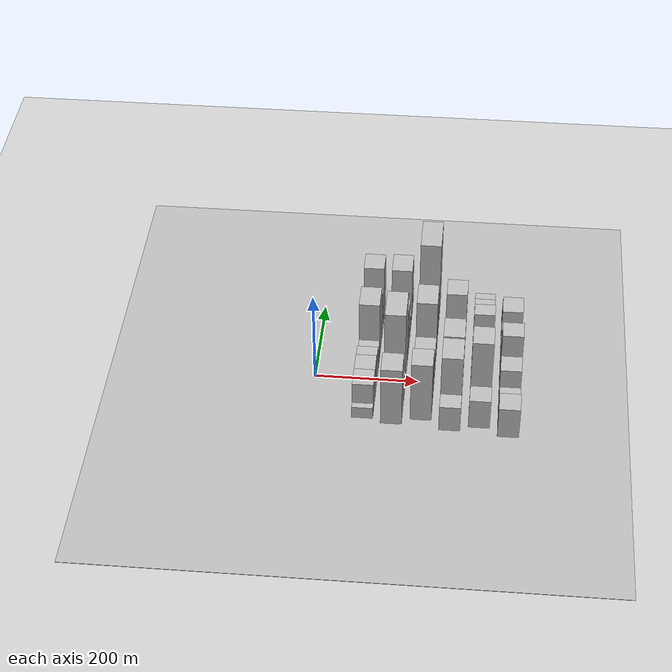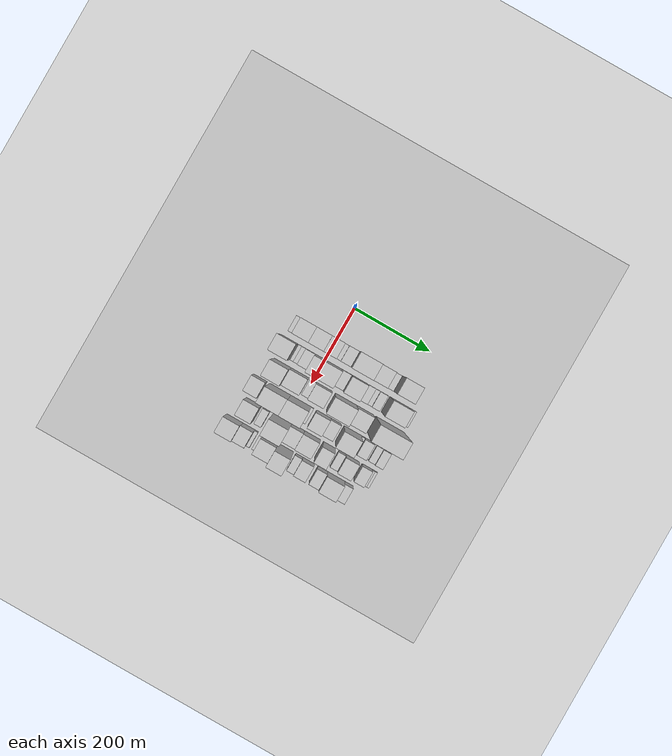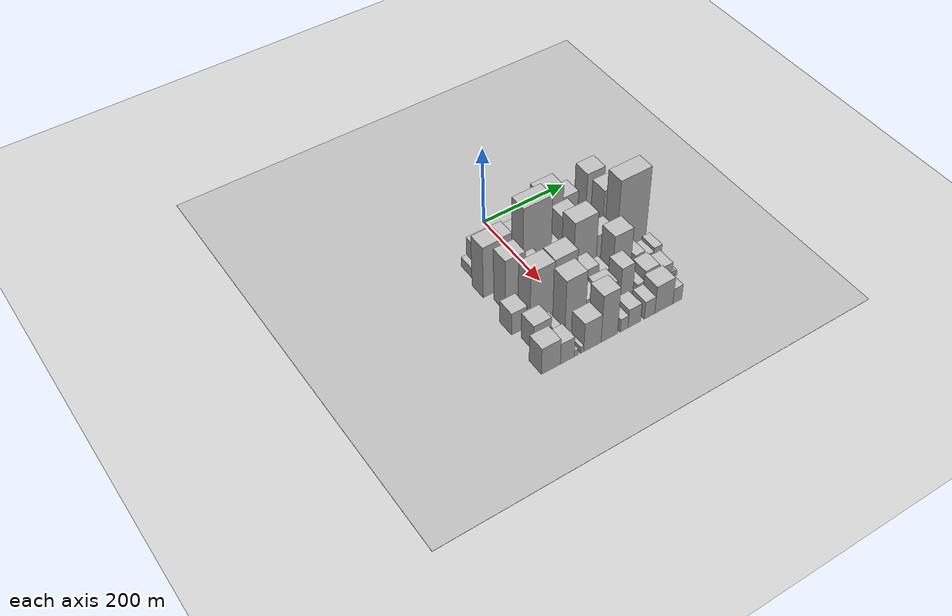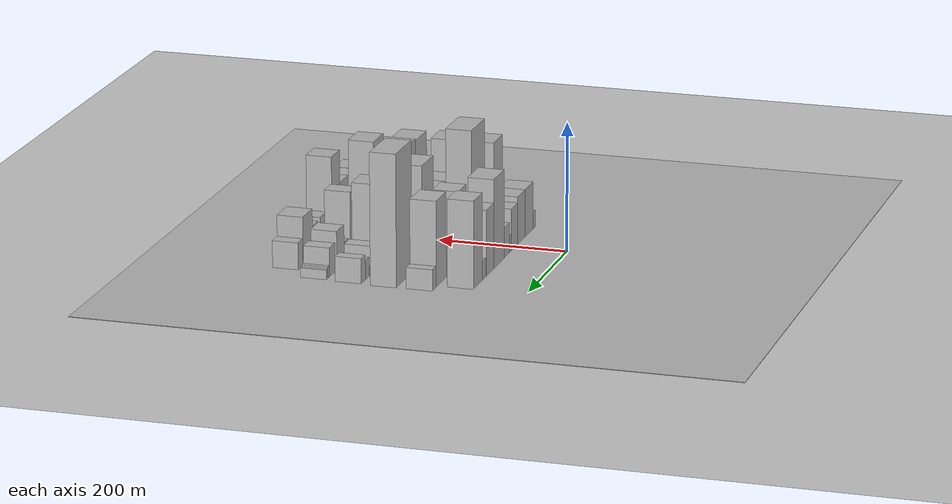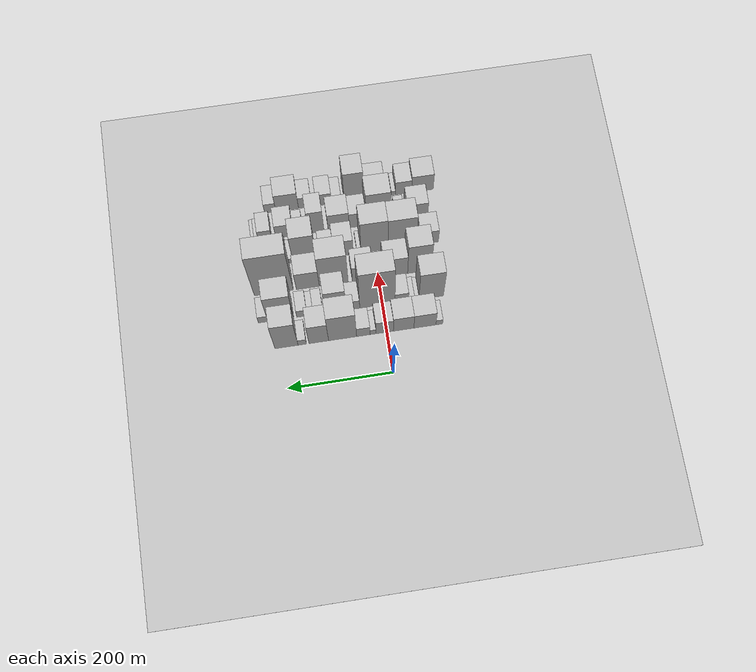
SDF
<sdf version="1.6">
 <world name="default">
  <include><name>ground_plane_1</name><uri>model://HANNAS_ground_plane</uri></include>
  <include>
   <name>ground_plane_2</name>
   <uri>model://HANNAS_ground_plane</uri>
   <pose>100 0 0  0 0 0</pose>
  </include>
  <model name="building_20">
   <static>1</static>
   <pose>100.0000 -99.8096 0 0.000000 0.000000 0.000000</pose>
   <link name="link">
    <pose>0 0 13.50 0 0 0</pose>
    <collision name="collision"><geometry><box><size>40.0000 12.9486 27.0000</size></box></geometry></collision>
    <visual name="visual">
     <cast_shadows>0</cast_shadows>
     <geometry><box><size>40.0000 12.9486 27.0000</size></box></geometry>
     <material>
      <script>
       <uri>model://HANNAS_wall/materials/scripts</uri>
       <uri>model://HANNAS_wall/materials/textures</uri>
       <name>vrc/HANNAS_wall</name>
      </script>
     </material>
    </visual>
   </link>
  </model>
  <model name="building_21">
   <static>1</static>
   <pose>100.0000 -72.1973 0 0.000000 0.000000 0.000000</pose>
   <link name="link">
    <pose>0 0 37.50 0 0 0</pose>
    <collision name="collision"><geometry><box><size>40.0000 42.2760 75.0000</size></box></geometry></collision>
    <visual name="visual">
     <cast_shadows>0</cast_shadows>
     <geometry><box><size>40.0000 42.2760 75.0000</size></box></geometry>
     <material>
      <script>
       <uri>model://HANNAS_wall/materials/scripts</uri>
       <uri>model://HANNAS_wall/materials/textures</uri>
       <name>vrc/HANNAS_wall</name>
      </script>
     </material>
    </visual>
   </link>
  </model>
  <model name="building_22">
   <static>1</static>
   <pose>100.0000 -31.4628 0 0.000000 0.000000 0.000000</pose>
   <link name="link">
    <pose>0 0 37.50 0 0 0</pose>
    <collision name="collision"><geometry><box><size>40.0000 39.1929 75.0000</size></box></geometry></collision>
    <visual name="visual">
     <cast_shadows>0</cast_shadows>
     <geometry><box><size>40.0000 39.1929 75.0000</size></box></geometry>
     <material>
      <script>
       <uri>model://HANNAS_wall/materials/scripts</uri>
       <uri>model://HANNAS_wall/materials/textures</uri>
       <name>vrc/HANNAS_wall</name>
      </script>
     </material>
    </visual>
   </link>
  </model>
  <model name="building_23">
   <static>1</static>
   <pose>100.0000 4.7394 0 0.000000 0.000000 0.000000</pose>
   <link name="link">
    <pose>0 0 33.00 0 0 0</pose>
    <collision name="collision"><geometry><box><size>40.0000 33.2117 66.0000</size></box></geometry></collision>
    <visual name="visual">
     <cast_shadows>0</cast_shadows>
     <geometry><box><size>40.0000 33.2117 66.0000</size></box></geometry>
     <material>
      <script>
       <uri>model://HANNAS_wall/materials/scripts</uri>
       <uri>model://HANNAS_wall/materials/textures</uri>
       <name>vrc/HANNAS_wall</name>
      </script>
     </material>
    </visual>
   </link>
  </model>
  <model name="building_24">
   <static>1</static>
   <pose>100.0000 26.8860 0 0.000000 0.000000 0.000000</pose>
   <link name="link">
    <pose>0 0 13.50 0 0 0</pose>
    <collision name="collision"><geometry><box><size>40.0000 11.0816 27.0000</size></box></geometry></collision>
    <visual name="visual">
     <cast_shadows>0</cast_shadows>
     <geometry><box><size>40.0000 11.0816 27.0000</size></box></geometry>
     <material>
      <script>
       <uri>model://HANNAS_wall/materials/scripts</uri>
       <uri>model://HANNAS_wall/materials/textures</uri>
       <name>vrc/HANNAS_wall</name>
      </script>
     </material>
    </visual>
   </link>
  </model>
  <model name="building_25">
   <static>1</static>
   <pose>100.0000 45.4038 0 0.000000 0.000000 0.000000</pose>
   <link name="link">
    <pose>0 0 24.00 0 0 0</pose>
    <collision name="collision"><geometry><box><size>40.0000 25.9538 48.0000</size></box></geometry></collision>
    <visual name="visual">
     <cast_shadows>0</cast_shadows>
     <geometry><box><size>40.0000 25.9538 48.0000</size></box></geometry>
     <material>
      <script>
       <uri>model://HANNAS_wall/materials/scripts</uri>
       <uri>model://HANNAS_wall/materials/textures</uri>
       <name>vrc/HANNAS_wall</name>
      </script>
     </material>
    </visual>
   </link>
  </model>
  <model name="building_26">
   <static>1</static>
   <pose>100.0000 85.0655 0 0.000000 0.000000 0.000000</pose>
   <link name="link">
    <pose>0 0 69.00 0 0 0</pose>
    <collision name="collision"><geometry><box><size>40.0000 53.3696 138.0000</size></box></geometry></collision>
    <visual name="visual">
     <cast_shadows>0</cast_shadows>
     <geometry><box><size>40.0000 53.3696 138.0000</size></box></geometry>
     <material>
      <script>
       <uri>model://HANNAS_wall/materials/scripts</uri>
       <uri>model://HANNAS_wall/materials/textures</uri>
       <name>vrc/HANNAS_wall</name>
      </script>
     </material>
    </visual>
   </link>
  </model>
  <model name="building_27">
   <static>1</static>
   <pose>100.0000 130.4153 0 0.000000 0.000000 0.000000</pose>
   <link name="link">
    <pose>0 0 51.00 0 0 0</pose>
    <collision name="collision"><geometry><box><size>40.0000 37.3301 102.0000</size></box></geometry></collision>
    <visual name="visual">
     <cast_shadows>0</cast_shadows>
     <geometry><box><size>40.0000 37.3301 102.0000</size></box></geometry>
     <material>
      <script>
       <uri>model://HANNAS_wall/materials/scripts</uri>
       <uri>model://HANNAS_wall/materials/textures</uri>
       <name>vrc/HANNAS_wall</name>
      </script>
     </material>
    </visual>
   </link>
  </model>
  <model name="building_28">
   <static>1</static>
   <pose>100.0000 162.0472 0 0.000000 0.000000 0.000000</pose>
   <link name="link">
    <pose>0 0 15.00 0 0 0</pose>
    <collision name="collision"><geometry><box><size>40.0000 15.9336 30.0000</size></box></geometry></collision>
    <visual name="visual">
     <cast_shadows>0</cast_shadows>
     <geometry><box><size>40.0000 15.9336 30.0000</size></box></geometry>
     <material>
      <script>
       <uri>model://HANNAS_wall/materials/scripts</uri>
       <uri>model://HANNAS_wall/materials/textures</uri>
       <name>vrc/HANNAS_wall</name>
      </script>
     </material>
    </visual>
   </link>
  </model>
  <model name="building_29">
   <static>1</static>
   <pose>100.0000 191.9779 0 0.000000 0.000000 0.000000</pose>
   <link name="link">
    <pose>0 0 67.50 0 0 0</pose>
    <collision name="collision"><geometry><box><size>40.0000 43.9278 135.0000</size></box></geometry></collision>
    <visual name="visual">
     <cast_shadows>0</cast_shadows>
     <geometry><box><size>40.0000 43.9278 135.0000</size></box></geometry>
     <material>
      <script>
       <uri>model://HANNAS_wall/materials/scripts</uri>
       <uri>model://HANNAS_wall/materials/textures</uri>
       <name>vrc/HANNAS_wall</name>
      </script>
     </material>
    </visual>
   </link>
  </model>
  <model name="building_71">
   <static>1</static>
   <pose>155.0000 -93.2026 0 0.000000 0.000000 0.000000</pose>
   <link name="link">
    <pose>0 0 69.00 0 0 0</pose>
    <collision name="collision"><geometry><box><size>40.0000 47.5985 138.0000</size></box></geometry></collision>
    <visual name="visual">
     <cast_shadows>0</cast_shadows>
     <geometry><box><size>40.0000 47.5985 138.0000</size></box></geometry>
     <material>
      <script>
       <uri>model://HANNAS_wall/materials/scripts</uri>
       <uri>model://HANNAS_wall/materials/textures</uri>
       <name>vrc/HANNAS_wall</name>
      </script>
     </material>
    </visual>
   </link>
  </model>
  <model name="building_72">
   <static>1</static>
   <pose>155.0000 -65.1442 0 0.000000 0.000000 0.000000</pose>
   <link name="link">
    <pose>0 0 9.00 0 0 0</pose>
    <collision name="collision"><geometry><box><size>40.0000 8.5184 18.0000</size></box></geometry></collision>
    <visual name="visual">
     <cast_shadows>0</cast_shadows>
     <geometry><box><size>40.0000 8.5184 18.0000</size></box></geometry>
     <material>
      <script>
       <uri>model://HANNAS_wall/materials/scripts</uri>
       <uri>model://HANNAS_wall/materials/textures</uri>
       <name>vrc/HANNAS_wall</name>
      </script>
     </material>
    </visual>
   </link>
  </model>
  <model name="building_73">
   <static>1</static>
   <pose>155.0000 -55.2796 0 0.000000 0.000000 0.000000</pose>
   <link name="link">
    <pose>0 0 12.00 0 0 0</pose>
    <collision name="collision"><geometry><box><size>40.0000 11.2107 24.0000</size></box></geometry></collision>
    <visual name="visual">
     <cast_shadows>0</cast_shadows>
     <geometry><box><size>40.0000 11.2107 24.0000</size></box></geometry>
     <material>
      <script>
       <uri>model://HANNAS_wall/materials/scripts</uri>
       <uri>model://HANNAS_wall/materials/textures</uri>
       <name>vrc/HANNAS_wall</name>
      </script>
     </material>
    </visual>
   </link>
  </model>
  <model name="building_74">
   <static>1</static>
   <pose>155.0000 -36.5506 0 0.000000 0.000000 0.000000</pose>
   <link name="link">
    <pose>0 0 24.00 0 0 0</pose>
    <collision name="collision"><geometry><box><size>40.0000 26.2474 48.0000</size></box></geometry></collision>
    <visual name="visual">
     <cast_shadows>0</cast_shadows>
     <geometry><box><size>40.0000 26.2474 48.0000</size></box></geometry>
     <material>
      <script>
       <uri>model://HANNAS_wall/materials/scripts</uri>
       <uri>model://HANNAS_wall/materials/textures</uri>
       <name>vrc/HANNAS_wall</name>
      </script>
     </material>
    </visual>
   </link>
  </model>
  <model name="building_75">
   <static>1</static>
   <pose>155.0000 10.3982 0 0.000000 0.000000 0.000000</pose>
   <link name="link">
    <pose>0 0 94.50 0 0 0</pose>
    <collision name="collision"><geometry><box><size>40.0000 67.6501 189.0000</size></box></geometry></collision>
    <visual name="visual">
     <cast_shadows>0</cast_shadows>
     <geometry><box><size>40.0000 67.6501 189.0000</size></box></geometry>
     <material>
      <script>
       <uri>model://HANNAS_wall/materials/scripts</uri>
       <uri>model://HANNAS_wall/materials/textures</uri>
       <name>vrc/HANNAS_wall</name>
      </script>
     </material>
    </visual>
   </link>
  </model>
  <model name="building_76">
   <static>1</static>
   <pose>155.0000 57.1042 0 0.000000 0.000000 0.000000</pose>
   <link name="link">
    <pose>0 0 22.50 0 0 0</pose>
    <collision name="collision"><geometry><box><size>40.0000 25.7621 45.0000</size></box></geometry></collision>
    <visual name="visual">
     <cast_shadows>0</cast_shadows>
     <geometry><box><size>40.0000 25.7621 45.0000</size></box></geometry>
     <material>
      <script>
       <uri>model://HANNAS_wall/materials/scripts</uri>
       <uri>model://HANNAS_wall/materials/textures</uri>
       <name>vrc/HANNAS_wall</name>
      </script>
     </material>
    </visual>
   </link>
  </model>
  <model name="building_77">
   <static>1</static>
   <pose>155.0000 90.2830 0 0.000000 0.000000 0.000000</pose>
   <link name="link">
    <pose>0 0 57.00 0 0 0</pose>
    <collision name="collision"><geometry><box><size>40.0000 40.5954 114.0000</size></box></geometry></collision>
    <visual name="visual">
     <cast_shadows>0</cast_shadows>
     <geometry><box><size>40.0000 40.5954 114.0000</size></box></geometry>
     <material>
      <script>
       <uri>model://HANNAS_wall/materials/scripts</uri>
       <uri>model://HANNAS_wall/materials/textures</uri>
       <name>vrc/HANNAS_wall</name>
      </script>
     </material>
    </visual>
   </link>
  </model>
  <model name="building_78">
   <static>1</static>
   <pose>155.0000 123.9114 0 0.000000 0.000000 0.000000</pose>
   <link name="link">
    <pose>0 0 18.00 0 0 0</pose>
    <collision name="collision"><geometry><box><size>40.0000 18.6615 36.0000</size></box></geometry></collision>
    <visual name="visual">
     <cast_shadows>0</cast_shadows>
     <geometry><box><size>40.0000 18.6615 36.0000</size></box></geometry>
     <material>
      <script>
       <uri>model://HANNAS_wall/materials/scripts</uri>
       <uri>model://HANNAS_wall/materials/textures</uri>
       <name>vrc/HANNAS_wall</name>
      </script>
     </material>
    </visual>
   </link>
  </model>
  <model name="building_79">
   <static>1</static>
   <pose>155.0000 139.1063 0 0.000000 0.000000 0.000000</pose>
   <link name="link">
    <pose>0 0 13.50 0 0 0</pose>
    <collision name="collision"><geometry><box><size>40.0000 11.7283 27.0000</size></box></geometry></collision>
    <visual name="visual">
     <cast_shadows>0</cast_shadows>
     <geometry><box><size>40.0000 11.7283 27.0000</size></box></geometry>
     <material>
      <script>
       <uri>model://HANNAS_wall/materials/scripts</uri>
       <uri>model://HANNAS_wall/materials/textures</uri>
       <name>vrc/HANNAS_wall</name>
      </script>
     </material>
    </visual>
   </link>
  </model>
  <model name="building_80">
   <static>1</static>
   <pose>155.0000 154.9879 0 0.000000 0.000000 0.000000</pose>
   <link name="link">
    <pose>0 0 18.00 0 0 0</pose>
    <collision name="collision"><geometry><box><size>40.0000 20.0349 36.0000</size></box></geometry></collision>
    <visual name="visual">
     <cast_shadows>0</cast_shadows>
     <geometry><box><size>40.0000 20.0349 36.0000</size></box></geometry>
     <material>
      <script>
       <uri>model://HANNAS_wall/materials/scripts</uri>
       <uri>model://HANNAS_wall/materials/textures</uri>
       <name>vrc/HANNAS_wall</name>
      </script>
     </material>
    </visual>
   </link>
  </model>
  <model name="building_81">
   <static>1</static>
   <pose>155.0000 195.7702 0 0.000000 0.000000 0.000000</pose>
   <link name="link">
    <pose>0 0 66.00 0 0 0</pose>
    <collision name="collision"><geometry><box><size>40.0000 49.5297 132.0000</size></box></geometry></collision>
    <visual name="visual">
     <cast_shadows>0</cast_shadows>
     <geometry><box><size>40.0000 49.5297 132.0000</size></box></geometry>
     <material>
      <script>
       <uri>model://HANNAS_wall/materials/scripts</uri>
       <uri>model://HANNAS_wall/materials/textures</uri>
       <name>vrc/HANNAS_wall</name>
      </script>
     </material>
    </visual>
   </link>
  </model>
  <model name="building_82">
   <static>1</static>
   <pose>155.0000 229.5223 0 0.000000 0.000000 0.000000</pose>
   <link name="link">
    <pose>0 0 16.50 0 0 0</pose>
    <collision name="collision"><geometry><box><size>40.0000 17.9745 33.0000</size></box></geometry></collision>
    <visual name="visual">
     <cast_shadows>0</cast_shadows>
     <geometry><box><size>40.0000 17.9745 33.0000</size></box></geometry>
     <material>
      <script>
       <uri>model://HANNAS_wall/materials/scripts</uri>
       <uri>model://HANNAS_wall/materials/textures</uri>
       <name>vrc/HANNAS_wall</name>
      </script>
     </material>
    </visual>
   </link>
  </model>
  <model name="building_129">
   <static>1</static>
   <pose>210.0000 -79.5325 0 0.000000 0.000000 0.000000</pose>
   <link name="link">
    <pose>0 0 70.50 0 0 0</pose>
    <collision name="collision"><geometry><box><size>40.0000 45.7464 141.0000</size></box></geometry></collision>
    <visual name="visual">
     <cast_shadows>0</cast_shadows>
     <geometry><box><size>40.0000 45.7464 141.0000</size></box></geometry>
     <material>
      <script>
       <uri>model://HANNAS_wall/materials/scripts</uri>
       <uri>model://HANNAS_wall/materials/textures</uri>
       <name>vrc/HANNAS_wall</name>
      </script>
     </material>
    </visual>
   </link>
  </model>
  <model name="building_130">
   <static>1</static>
   <pose>210.0000 -33.7293 0 0.000000 0.000000 0.000000</pose>
   <link name="link">
    <pose>0 0 45.00 0 0 0</pose>
    <collision name="collision"><geometry><box><size>40.0000 45.8599 90.0000</size></box></geometry></collision>
    <visual name="visual">
     <cast_shadows>0</cast_shadows>
     <geometry><box><size>40.0000 45.8599 90.0000</size></box></geometry>
     <material>
      <script>
       <uri>model://HANNAS_wall/materials/scripts</uri>
       <uri>model://HANNAS_wall/materials/textures</uri>
       <name>vrc/HANNAS_wall</name>
      </script>
     </material>
    </visual>
   </link>
  </model>
  <model name="building_131">
   <static>1</static>
   <pose>210.0000 0.8746 0 0.000000 0.000000 0.000000</pose>
   <link name="link">
    <pose>0 0 16.50 0 0 0</pose>
    <collision name="collision"><geometry><box><size>40.0000 17.3480 33.0000</size></box></geometry></collision>
    <visual name="visual">
     <cast_shadows>0</cast_shadows>
     <geometry><box><size>40.0000 17.3480 33.0000</size></box></geometry>
     <material>
      <script>
       <uri>model://HANNAS_wall/materials/scripts</uri>
       <uri>model://HANNAS_wall/materials/textures</uri>
       <name>vrc/HANNAS_wall</name>
      </script>
     </material>
    </visual>
   </link>
  </model>
  <model name="building_132">
   <static>1</static>
   <pose>210.0000 30.0001 0 0.000000 0.000000 0.000000</pose>
   <link name="link">
    <pose>0 0 36.00 0 0 0</pose>
    <collision name="collision"><geometry><box><size>40.0000 40.9029 72.0000</size></box></geometry></collision>
    <visual name="visual">
     <cast_shadows>0</cast_shadows>
     <geometry><box><size>40.0000 40.9029 72.0000</size></box></geometry>
     <material>
      <script>
       <uri>model://HANNAS_wall/materials/scripts</uri>
       <uri>model://HANNAS_wall/materials/textures</uri>
       <name>vrc/HANNAS_wall</name>
      </script>
     </material>
    </visual>
   </link>
  </model>
  <model name="building_133">
   <static>1</static>
   <pose>210.0000 86.3339 0 0.000000 0.000000 0.000000</pose>
   <link name="link">
    <pose>0 0 75.00 0 0 0</pose>
    <collision name="collision"><geometry><box><size>40.0000 55.7647 150.0000</size></box></geometry></collision>
    <visual name="visual">
     <cast_shadows>0</cast_shadows>
     <geometry><box><size>40.0000 55.7647 150.0000</size></box></geometry>
     <material>
      <script>
       <uri>model://HANNAS_wall/materials/scripts</uri>
       <uri>model://HANNAS_wall/materials/textures</uri>
       <name>vrc/HANNAS_wall</name>
      </script>
     </material>
    </visual>
   </link>
  </model>
  <model name="building_134">
   <static>1</static>
   <pose>210.0000 136.3790 0 0.000000 0.000000 0.000000</pose>
   <link name="link">
    <pose>0 0 42.00 0 0 0</pose>
    <collision name="collision"><geometry><box><size>40.0000 44.3255 84.0000</size></box></geometry></collision>
    <visual name="visual">
     <cast_shadows>0</cast_shadows>
     <geometry><box><size>40.0000 44.3255 84.0000</size></box></geometry>
     <material>
      <script>
       <uri>model://HANNAS_wall/materials/scripts</uri>
       <uri>model://HANNAS_wall/materials/textures</uri>
       <name>vrc/HANNAS_wall</name>
      </script>
     </material>
    </visual>
   </link>
  </model>
  <model name="building_135">
   <static>1</static>
   <pose>210.0000 201.9920 0 0.000000 0.000000 0.000000</pose>
   <link name="link">
    <pose>0 0 102.00 0 0 0</pose>
    <collision name="collision"><geometry><box><size>40.0000 74.9003 204.0000</size></box></geometry></collision>
    <visual name="visual">
     <cast_shadows>0</cast_shadows>
     <geometry><box><size>40.0000 74.9003 204.0000</size></box></geometry>
     <material>
      <script>
       <uri>model://HANNAS_wall/materials/scripts</uri>
       <uri>model://HANNAS_wall/materials/textures</uri>
       <name>vrc/HANNAS_wall</name>
      </script>
     </material>
    </visual>
   </link>
  </model>
  <model name="building_179">
   <static>1</static>
   <pose>265.0000 -107.7108 0 0.000000 0.000000 0.000000</pose>
   <link name="link">
    <pose>0 0 30.00 0 0 0</pose>
    <collision name="collision"><geometry><box><size>40.0000 35.6724 60.0000</size></box></geometry></collision>
    <visual name="visual">
     <cast_shadows>0</cast_shadows>
     <geometry><box><size>40.0000 35.6724 60.0000</size></box></geometry>
     <material>
      <script>
       <uri>model://HANNAS_wall/materials/scripts</uri>
       <uri>model://HANNAS_wall/materials/textures</uri>
       <name>vrc/HANNAS_wall</name>
      </script>
     </material>
    </visual>
   </link>
  </model>
  <model name="building_180">
   <static>1</static>
   <pose>265.0000 -54.9754 0 0.000000 0.000000 0.000000</pose>
   <link name="link">
    <pose>0 0 72.00 0 0 0</pose>
    <collision name="collision"><geometry><box><size>40.0000 55.7984 144.0000</size></box></geometry></collision>
    <visual name="visual">
     <cast_shadows>0</cast_shadows>
     <geometry><box><size>40.0000 55.7984 144.0000</size></box></geometry>
     <material>
      <script>
       <uri>model://HANNAS_wall/materials/scripts</uri>
       <uri>model://HANNAS_wall/materials/textures</uri>
       <name>vrc/HANNAS_wall</name>
      </script>
     </material>
    </visual>
   </link>
  </model>
  <model name="building_181">
   <static>1</static>
   <pose>265.0000 -0.7735 0 0.000000 0.000000 0.000000</pose>
   <link name="link">
    <pose>0 0 73.50 0 0 0</pose>
    <collision name="collision"><geometry><box><size>40.0000 52.6055 147.0000</size></box></geometry></collision>
    <visual name="visual">
     <cast_shadows>0</cast_shadows>
     <geometry><box><size>40.0000 52.6055 147.0000</size></box></geometry>
     <material>
      <script>
       <uri>model://HANNAS_wall/materials/scripts</uri>
       <uri>model://HANNAS_wall/materials/textures</uri>
       <name>vrc/HANNAS_wall</name>
      </script>
     </material>
    </visual>
   </link>
  </model>
  <model name="building_182">
   <static>1</static>
   <pose>265.0000 29.4587 0 0.000000 0.000000 0.000000</pose>
   <link name="link">
    <pose>0 0 9.00 0 0 0</pose>
    <collision name="collision"><geometry><box><size>40.0000 7.8588 18.0000</size></box></geometry></collision>
    <visual name="visual">
     <cast_shadows>0</cast_shadows>
     <geometry><box><size>40.0000 7.8588 18.0000</size></box></geometry>
     <material>
      <script>
       <uri>model://HANNAS_wall/materials/scripts</uri>
       <uri>model://HANNAS_wall/materials/textures</uri>
       <name>vrc/HANNAS_wall</name>
      </script>
     </material>
    </visual>
   </link>
  </model>
  <model name="building_183">
   <static>1</static>
   <pose>265.0000 59.1696 0 0.000000 0.000000 0.000000</pose>
   <link name="link">
    <pose>0 0 37.50 0 0 0</pose>
    <collision name="collision"><geometry><box><size>40.0000 37.5629 75.0000</size></box></geometry></collision>
    <visual name="visual">
     <cast_shadows>0</cast_shadows>
     <geometry><box><size>40.0000 37.5629 75.0000</size></box></geometry>
     <material>
      <script>
       <uri>model://HANNAS_wall/materials/scripts</uri>
       <uri>model://HANNAS_wall/materials/textures</uri>
       <name>vrc/HANNAS_wall</name>
      </script>
     </material>
    </visual>
   </link>
  </model>
  <model name="building_184">
   <static>1</static>
   <pose>265.0000 91.9077 0 0.000000 0.000000 0.000000</pose>
   <link name="link">
    <pose>0 0 24.00 0 0 0</pose>
    <collision name="collision"><geometry><box><size>40.0000 27.9133 48.0000</size></box></geometry></collision>
    <visual name="visual">
     <cast_shadows>0</cast_shadows>
     <geometry><box><size>40.0000 27.9133 48.0000</size></box></geometry>
     <material>
      <script>
       <uri>model://HANNAS_wall/materials/scripts</uri>
       <uri>model://HANNAS_wall/materials/textures</uri>
       <name>vrc/HANNAS_wall</name>
      </script>
     </material>
    </visual>
   </link>
  </model>
  <model name="building_185">
   <static>1</static>
   <pose>265.0000 135.3201 0 0.000000 0.000000 0.000000</pose>
   <link name="link">
    <pose>0 0 64.50 0 0 0</pose>
    <collision name="collision"><geometry><box><size>40.0000 44.9114 129.0000</size></box></geometry></collision>
    <visual name="visual">
     <cast_shadows>0</cast_shadows>
     <geometry><box><size>40.0000 44.9114 129.0000</size></box></geometry>
     <material>
      <script>
       <uri>model://HANNAS_wall/materials/scripts</uri>
       <uri>model://HANNAS_wall/materials/textures</uri>
       <name>vrc/HANNAS_wall</name>
      </script>
     </material>
    </visual>
   </link>
  </model>
  <model name="building_186">
   <static>1</static>
   <pose>265.0000 162.9664 0 0.000000 0.000000 0.000000</pose>
   <link name="link">
    <pose>0 0 12.00 0 0 0</pose>
    <collision name="collision"><geometry><box><size>40.0000 10.3811 24.0000</size></box></geometry></collision>
    <visual name="visual">
     <cast_shadows>0</cast_shadows>
     <geometry><box><size>40.0000 10.3811 24.0000</size></box></geometry>
     <material>
      <script>
       <uri>model://HANNAS_wall/materials/scripts</uri>
       <uri>model://HANNAS_wall/materials/textures</uri>
       <name>vrc/HANNAS_wall</name>
      </script>
     </material>
    </visual>
   </link>
  </model>
  <model name="building_187">
   <static>1</static>
   <pose>265.0000 180.4362 0 0.000000 0.000000 0.000000</pose>
   <link name="link">
    <pose>0 0 22.50 0 0 0</pose>
    <collision name="collision"><geometry><box><size>40.0000 24.5585 45.0000</size></box></geometry></collision>
    <visual name="visual">
     <cast_shadows>0</cast_shadows>
     <geometry><box><size>40.0000 24.5585 45.0000</size></box></geometry>
     <material>
      <script>
       <uri>model://HANNAS_wall/materials/scripts</uri>
       <uri>model://HANNAS_wall/materials/textures</uri>
       <name>vrc/HANNAS_wall</name>
      </script>
     </material>
    </visual>
   </link>
  </model>
  <model name="building_188">
   <static>1</static>
   <pose>265.0000 195.9255 0 0.000000 0.000000 0.000000</pose>
   <link name="link">
    <pose>0 0 7.50 0 0 0</pose>
    <collision name="collision"><geometry><box><size>40.0000 6.4203 15.0000</size></box></geometry></collision>
    <visual name="visual">
     <cast_shadows>0</cast_shadows>
     <geometry><box><size>40.0000 6.4203 15.0000</size></box></geometry>
     <material>
      <script>
       <uri>model://HANNAS_wall/materials/scripts</uri>
       <uri>model://HANNAS_wall/materials/textures</uri>
       <name>vrc/HANNAS_wall</name>
      </script>
     </material>
    </visual>
   </link>
  </model>
  <model name="building_189">
   <static>1</static>
   <pose>265.0000 207.6472 0 0.000000 0.000000 0.000000</pose>
   <link name="link">
    <pose>0 0 15.00 0 0 0</pose>
    <collision name="collision"><geometry><box><size>40.0000 17.0230 30.0000</size></box></geometry></collision>
    <visual name="visual">
     <cast_shadows>0</cast_shadows>
     <geometry><box><size>40.0000 17.0230 30.0000</size></box></geometry>
     <material>
      <script>
       <uri>model://HANNAS_wall/materials/scripts</uri>
       <uri>model://HANNAS_wall/materials/textures</uri>
       <name>vrc/HANNAS_wall</name>
      </script>
     </material>
    </visual>
   </link>
  </model>
  <model name="building_190">
   <static>1</static>
   <pose>265.0000 226.0197 0 0.000000 0.000000 0.000000</pose>
   <link name="link">
    <pose>0 0 19.50 0 0 0</pose>
    <collision name="collision"><geometry><box><size>40.0000 19.7222 39.0000</size></box></geometry></collision>
    <visual name="visual">
     <cast_shadows>0</cast_shadows>
     <geometry><box><size>40.0000 19.7222 39.0000</size></box></geometry>
     <material>
      <script>
       <uri>model://HANNAS_wall/materials/scripts</uri>
       <uri>model://HANNAS_wall/materials/textures</uri>
       <name>vrc/HANNAS_wall</name>
      </script>
     </material>
    </visual>
   </link>
  </model>
  <model name="building_234">
   <static>1</static>
   <pose>320.0000 -93.3822 0 0.000000 0.000000 0.000000</pose>
   <link name="link">
    <pose>0 0 34.50 0 0 0</pose>
    <collision name="collision"><geometry><box><size>40.0000 40.5313 69.0000</size></box></geometry></collision>
    <visual name="visual">
     <cast_shadows>0</cast_shadows>
     <geometry><box><size>40.0000 40.5313 69.0000</size></box></geometry>
     <material>
      <script>
       <uri>model://HANNAS_wall/materials/scripts</uri>
       <uri>model://HANNAS_wall/materials/textures</uri>
       <name>vrc/HANNAS_wall</name>
      </script>
     </material>
    </visual>
   </link>
  </model>
  <model name="building_235">
   <static>1</static>
   <pose>320.0000 -59.0562 0 0.000000 0.000000 0.000000</pose>
   <link name="link">
    <pose>0 0 16.50 0 0 0</pose>
    <collision name="collision"><geometry><box><size>40.0000 18.1206 33.0000</size></box></geometry></collision>
    <visual name="visual">
     <cast_shadows>0</cast_shadows>
     <geometry><box><size>40.0000 18.1206 33.0000</size></box></geometry>
     <material>
      <script>
       <uri>model://HANNAS_wall/materials/scripts</uri>
       <uri>model://HANNAS_wall/materials/textures</uri>
       <name>vrc/HANNAS_wall</name>
      </script>
     </material>
    </visual>
   </link>
  </model>
  <model name="building_236">
   <static>1</static>
   <pose>320.0000 -17.0648 0 0.000000 0.000000 0.000000</pose>
   <link name="link">
    <pose>0 0 73.50 0 0 0</pose>
    <collision name="collision"><geometry><box><size>40.0000 47.8622 147.0000</size></box></geometry></collision>
    <visual name="visual">
     <cast_shadows>0</cast_shadows>
     <geometry><box><size>40.0000 47.8622 147.0000</size></box></geometry>
     <material>
      <script>
       <uri>model://HANNAS_wall/materials/scripts</uri>
       <uri>model://HANNAS_wall/materials/textures</uri>
       <name>vrc/HANNAS_wall</name>
      </script>
     </material>
    </visual>
   </link>
  </model>
  <model name="building_237">
   <static>1</static>
   <pose>320.0000 23.5684 0 0.000000 0.000000 0.000000</pose>
   <link name="link">
    <pose>0 0 33.00 0 0 0</pose>
    <collision name="collision"><geometry><box><size>40.0000 33.4041 66.0000</size></box></geometry></collision>
    <visual name="visual">
     <cast_shadows>0</cast_shadows>
     <geometry><box><size>40.0000 33.4041 66.0000</size></box></geometry>
     <material>
      <script>
       <uri>model://HANNAS_wall/materials/scripts</uri>
       <uri>model://HANNAS_wall/materials/textures</uri>
       <name>vrc/HANNAS_wall</name>
      </script>
     </material>
    </visual>
   </link>
  </model>
  <model name="building_238">
   <static>1</static>
   <pose>320.0000 60.9755 0 0.000000 0.000000 0.000000</pose>
   <link name="link">
    <pose>0 0 37.50 0 0 0</pose>
    <collision name="collision"><geometry><box><size>40.0000 41.4102 75.0000</size></box></geometry></collision>
    <visual name="visual">
     <cast_shadows>0</cast_shadows>
     <geometry><box><size>40.0000 41.4102 75.0000</size></box></geometry>
     <material>
      <script>
       <uri>model://HANNAS_wall/materials/scripts</uri>
       <uri>model://HANNAS_wall/materials/textures</uri>
       <name>vrc/HANNAS_wall</name>
      </script>
     </material>
    </visual>
   </link>
  </model>
  <model name="building_239">
   <static>1</static>
   <pose>320.0000 105.0805 0 0.000000 0.000000 0.000000</pose>
   <link name="link">
    <pose>0 0 51.00 0 0 0</pose>
    <collision name="collision"><geometry><box><size>40.0000 30.7997 102.0000</size></box></geometry></collision>
    <visual name="visual">
     <cast_shadows>0</cast_shadows>
     <geometry><box><size>40.0000 30.7997 102.0000</size></box></geometry>
     <material>
      <script>
       <uri>model://HANNAS_wall/materials/scripts</uri>
       <uri>model://HANNAS_wall/materials/textures</uri>
       <name>vrc/HANNAS_wall</name>
      </script>
     </material>
    </visual>
   </link>
  </model>
  <model name="building_240">
   <static>1</static>
   <pose>320.0000 139.9215 0 0.000000 0.000000 0.000000</pose>
   <link name="link">
    <pose>0 0 16.50 0 0 0</pose>
    <collision name="collision"><geometry><box><size>40.0000 18.8823 33.0000</size></box></geometry></collision>
    <visual name="visual">
     <cast_shadows>0</cast_shadows>
     <geometry><box><size>40.0000 18.8823 33.0000</size></box></geometry>
     <material>
      <script>
       <uri>model://HANNAS_wall/materials/scripts</uri>
       <uri>model://HANNAS_wall/materials/textures</uri>
       <name>vrc/HANNAS_wall</name>
      </script>
     </material>
    </visual>
   </link>
  </model>
  <model name="building_241">
   <static>1</static>
   <pose>320.0000 166.7171 0 0.000000 0.000000 0.000000</pose>
   <link name="link">
    <pose>0 0 30.00 0 0 0</pose>
    <collision name="collision"><geometry><box><size>40.0000 34.7089 60.0000</size></box></geometry></collision>
    <visual name="visual">
     <cast_shadows>0</cast_shadows>
     <geometry><box><size>40.0000 34.7089 60.0000</size></box></geometry>
     <material>
      <script>
       <uri>model://HANNAS_wall/materials/scripts</uri>
       <uri>model://HANNAS_wall/materials/textures</uri>
       <name>vrc/HANNAS_wall</name>
      </script>
     </material>
    </visual>
   </link>
  </model>
  <model name="building_242">
   <static>1</static>
   <pose>320.0000 205.1344 0 0.000000 0.000000 0.000000</pose>
   <link name="link">
    <pose>0 0 22.50 0 0 0</pose>
    <collision name="collision"><geometry><box><size>40.0000 26.1258 45.0000</size></box></geometry></collision>
    <visual name="visual">
     <cast_shadows>0</cast_shadows>
     <geometry><box><size>40.0000 26.1258 45.0000</size></box></geometry>
     <material>
      <script>
       <uri>model://HANNAS_wall/materials/scripts</uri>
       <uri>model://HANNAS_wall/materials/textures</uri>
       <name>vrc/HANNAS_wall</name>
      </script>
     </material>
    </visual>
   </link>
  </model>
  <model name="building_243">
   <static>1</static>
   <pose>320.0000 221.9305 0 0.000000 0.000000 0.000000</pose>
   <link name="link">
    <pose>0 0 9.00 0 0 0</pose>
    <collision name="collision"><geometry><box><size>40.0000 7.4665 18.0000</size></box></geometry></collision>
    <visual name="visual">
     <cast_shadows>0</cast_shadows>
     <geometry><box><size>40.0000 7.4665 18.0000</size></box></geometry>
     <material>
      <script>
       <uri>model://HANNAS_wall/materials/scripts</uri>
       <uri>model://HANNAS_wall/materials/textures</uri>
       <name>vrc/HANNAS_wall</name>
      </script>
     </material>
    </visual>
   </link>
  </model>
  <model name="building_244">
   <static>1</static>
   <pose>320.0000 228.8379 0 0.000000 0.000000 0.000000</pose>
   <link name="link">
    <pose>0 0 7.50 0 0 0</pose>
    <collision name="collision"><geometry><box><size>40.0000 6.3482 15.0000</size></box></geometry></collision>
    <visual name="visual">
     <cast_shadows>0</cast_shadows>
     <geometry><box><size>40.0000 6.3482 15.0000</size></box></geometry>
     <material>
      <script>
       <uri>model://HANNAS_wall/materials/scripts</uri>
       <uri>model://HANNAS_wall/materials/textures</uri>
       <name>vrc/HANNAS_wall</name>
      </script>
     </material>
    </visual>
   </link>
  </model>
  <model name="building_284">
   <static>1</static>
   <pose>375.0000 -112.3477 0 0.000000 0.000000 0.000000</pose>
   <link name="link">
    <pose>0 0 36.00 0 0 0</pose>
    <collision name="collision"><geometry><box><size>40.0000 42.8833 72.0000</size></box></geometry></collision>
    <visual name="visual">
     <cast_shadows>0</cast_shadows>
     <geometry><box><size>40.0000 42.8833 72.0000</size></box></geometry>
     <material>
      <script>
       <uri>model://HANNAS_wall/materials/scripts</uri>
       <uri>model://HANNAS_wall/materials/textures</uri>
       <name>vrc/HANNAS_wall</name>
      </script>
     </material>
    </visual>
   </link>
  </model>
  <model name="building_285">
   <static>1</static>
   <pose>375.0000 -74.9233 0 0.000000 0.000000 0.000000</pose>
   <link name="link">
    <pose>0 0 28.50 0 0 0</pose>
    <collision name="collision"><geometry><box><size>40.0000 31.9654 57.0000</size></box></geometry></collision>
    <visual name="visual">
     <cast_shadows>0</cast_shadows>
     <geometry><box><size>40.0000 31.9654 57.0000</size></box></geometry>
     <material>
      <script>
       <uri>model://HANNAS_wall/materials/scripts</uri>
       <uri>model://HANNAS_wall/materials/textures</uri>
       <name>vrc/HANNAS_wall</name>
      </script>
     </material>
    </visual>
   </link>
  </model>
  <model name="building_286">
   <static>1</static>
   <pose>375.0000 -54.6766 0 0.000000 0.000000 0.000000</pose>
   <link name="link">
    <pose>0 0 9.00 0 0 0</pose>
    <collision name="collision"><geometry><box><size>40.0000 8.5281 18.0000</size></box></geometry></collision>
    <visual name="visual">
     <cast_shadows>0</cast_shadows>
     <geometry><box><size>40.0000 8.5281 18.0000</size></box></geometry>
     <material>
      <script>
       <uri>model://HANNAS_wall/materials/scripts</uri>
       <uri>model://HANNAS_wall/materials/textures</uri>
       <name>vrc/HANNAS_wall</name>
      </script>
     </material>
    </visual>
   </link>
  </model>
  <model name="building_287">
   <static>1</static>
   <pose>375.0000 -40.7541 0 0.000000 0.000000 0.000000</pose>
   <link name="link">
    <pose>0 0 9.00 0 0 0</pose>
    <collision name="collision"><geometry><box><size>40.0000 7.3169 18.0000</size></box></geometry></collision>
    <visual name="visual">
     <cast_shadows>0</cast_shadows>
     <geometry><box><size>40.0000 7.3169 18.0000</size></box></geometry>
     <material>
      <script>
       <uri>model://HANNAS_wall/materials/scripts</uri>
       <uri>model://HANNAS_wall/materials/textures</uri>
       <name>vrc/HANNAS_wall</name>
      </script>
     </material>
    </visual>
   </link>
  </model>
  <model name="building_288">
   <static>1</static>
   <pose>375.0000 -16.7893 0 0.000000 0.000000 0.000000</pose>
   <link name="link">
    <pose>0 0 39.00 0 0 0</pose>
    <collision name="collision"><geometry><box><size>40.0000 40.6126 78.0000</size></box></geometry></collision>
    <visual name="visual">
     <cast_shadows>0</cast_shadows>
     <geometry><box><size>40.0000 40.6126 78.0000</size></box></geometry>
     <material>
      <script>
       <uri>model://HANNAS_wall/materials/scripts</uri>
       <uri>model://HANNAS_wall/materials/textures</uri>
       <name>vrc/HANNAS_wall</name>
      </script>
     </material>
    </visual>
   </link>
  </model>
  <model name="building_289">
   <static>1</static>
   <pose>375.0000 22.9235 0 0.000000 0.000000 0.000000</pose>
   <link name="link">
    <pose>0 0 64.50 0 0 0</pose>
    <collision name="collision"><geometry><box><size>40.0000 38.8129 129.0000</size></box></geometry></collision>
    <visual name="visual">
     <cast_shadows>0</cast_shadows>
     <geometry><box><size>40.0000 38.8129 129.0000</size></box></geometry>
     <material>
      <script>
       <uri>model://HANNAS_wall/materials/scripts</uri>
       <uri>model://HANNAS_wall/materials/textures</uri>
       <name>vrc/HANNAS_wall</name>
      </script>
     </material>
    </visual>
   </link>
  </model>
  <model name="building_290">
   <static>1</static>
   <pose>375.0000 57.8386 0 0.000000 0.000000 0.000000</pose>
   <link name="link">
    <pose>0 0 18.00 0 0 0</pose>
    <collision name="collision"><geometry><box><size>40.0000 19.0173 36.0000</size></box></geometry></collision>
    <visual name="visual">
     <cast_shadows>0</cast_shadows>
     <geometry><box><size>40.0000 19.0173 36.0000</size></box></geometry>
     <material>
      <script>
       <uri>model://HANNAS_wall/materials/scripts</uri>
       <uri>model://HANNAS_wall/materials/textures</uri>
       <name>vrc/HANNAS_wall</name>
      </script>
     </material>
    </visual>
   </link>
  </model>
  <model name="building_291">
   <static>1</static>
   <pose>375.0000 82.5369 0 0.000000 0.000000 0.000000</pose>
   <link name="link">
    <pose>0 0 25.50 0 0 0</pose>
    <collision name="collision"><geometry><box><size>40.0000 30.3793 51.0000</size></box></geometry></collision>
    <visual name="visual">
     <cast_shadows>0</cast_shadows>
     <geometry><box><size>40.0000 30.3793 51.0000</size></box></geometry>
     <material>
      <script>
       <uri>model://HANNAS_wall/materials/scripts</uri>
       <uri>model://HANNAS_wall/materials/textures</uri>
       <name>vrc/HANNAS_wall</name>
      </script>
     </material>
    </visual>
   </link>
  </model>
  <model name="building_292">
   <static>1</static>
   <pose>375.0000 119.6547 0 0.000000 0.000000 0.000000</pose>
   <link name="link">
    <pose>0 0 24.00 0 0 0</pose>
    <collision name="collision"><geometry><box><size>40.0000 25.8562 48.0000</size></box></geometry></collision>
    <visual name="visual">
     <cast_shadows>0</cast_shadows>
     <geometry><box><size>40.0000 25.8562 48.0000</size></box></geometry>
     <material>
      <script>
       <uri>model://HANNAS_wall/materials/scripts</uri>
       <uri>model://HANNAS_wall/materials/textures</uri>
       <name>vrc/HANNAS_wall</name>
      </script>
     </material>
    </visual>
   </link>
  </model>
  <model name="building_293">
   <static>1</static>
   <pose>375.0000 154.8065 0 0.000000 0.000000 0.000000</pose>
   <link name="link">
    <pose>0 0 37.50 0 0 0</pose>
    <collision name="collision"><geometry><box><size>40.0000 44.4474 75.0000</size></box></geometry></collision>
    <visual name="visual">
     <cast_shadows>0</cast_shadows>
     <geometry><box><size>40.0000 44.4474 75.0000</size></box></geometry>
     <material>
      <script>
       <uri>model://HANNAS_wall/materials/scripts</uri>
       <uri>model://HANNAS_wall/materials/textures</uri>
       <name>vrc/HANNAS_wall</name>
      </script>
     </material>
    </visual>
   </link>
  </model>
  <model name="building_294">
   <static>1</static>
   <pose>375.0000 188.1284 0 0.000000 0.000000 0.000000</pose>
   <link name="link">
    <pose>0 0 21.00 0 0 0</pose>
    <collision name="collision"><geometry><box><size>40.0000 22.1966 42.0000</size></box></geometry></collision>
    <visual name="visual">
     <cast_shadows>0</cast_shadows>
     <geometry><box><size>40.0000 22.1966 42.0000</size></box></geometry>
     <material>
      <script>
       <uri>model://HANNAS_wall/materials/scripts</uri>
       <uri>model://HANNAS_wall/materials/textures</uri>
       <name>vrc/HANNAS_wall</name>
      </script>
     </material>
    </visual>
   </link>
  </model>
 </world>
</sdf>
